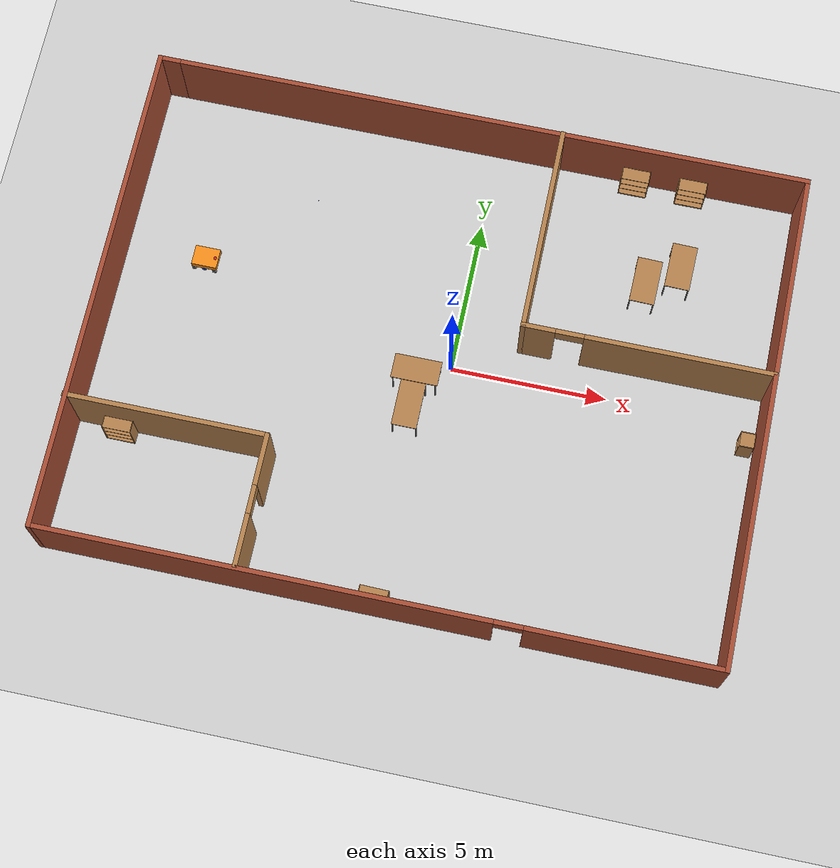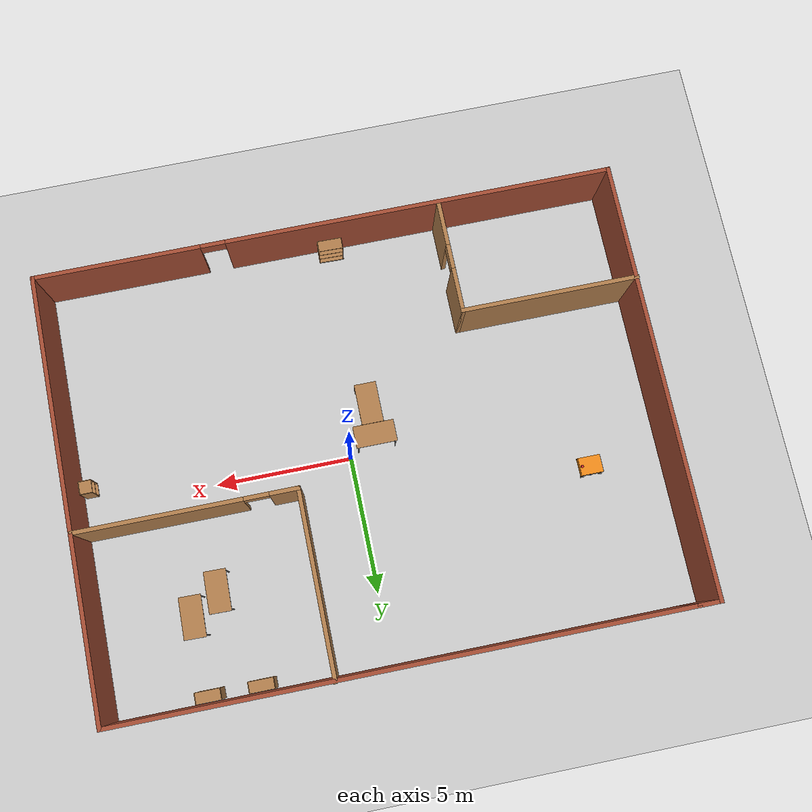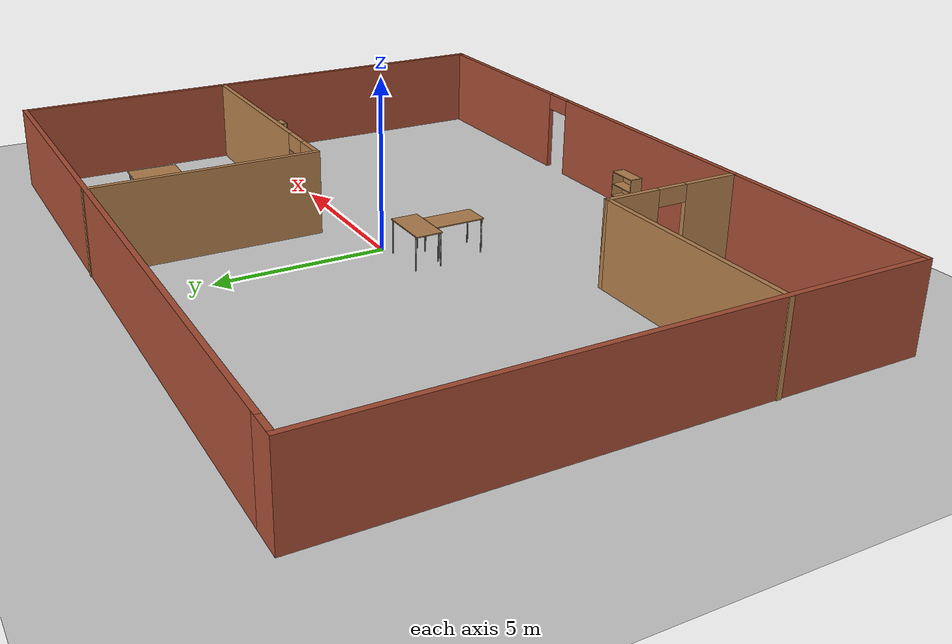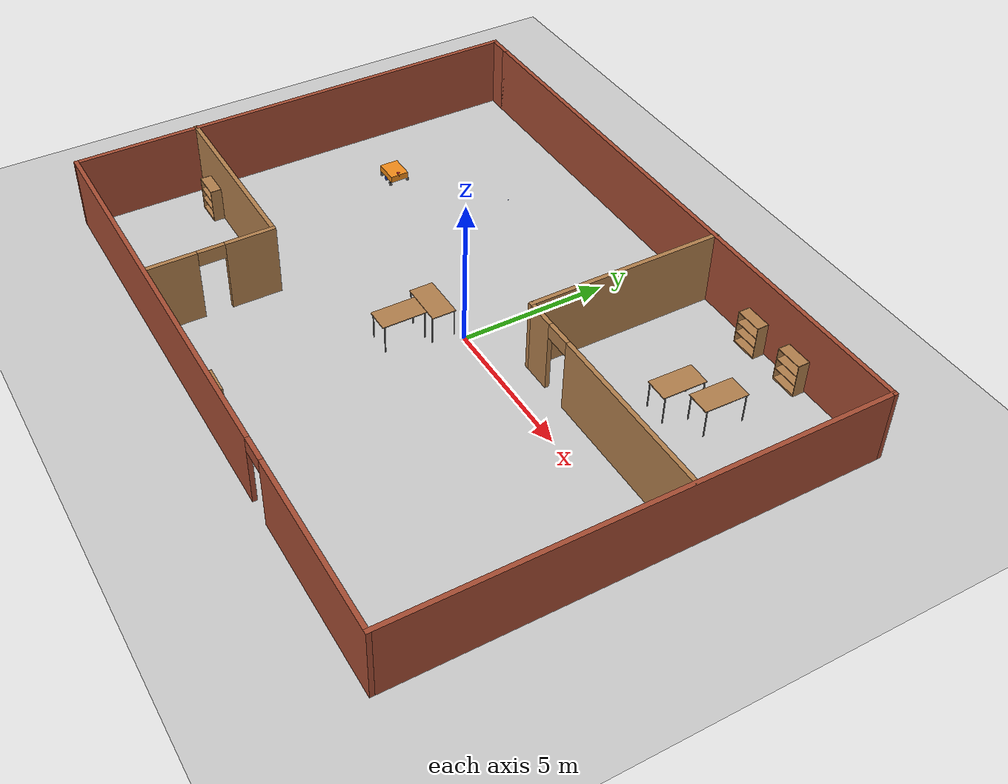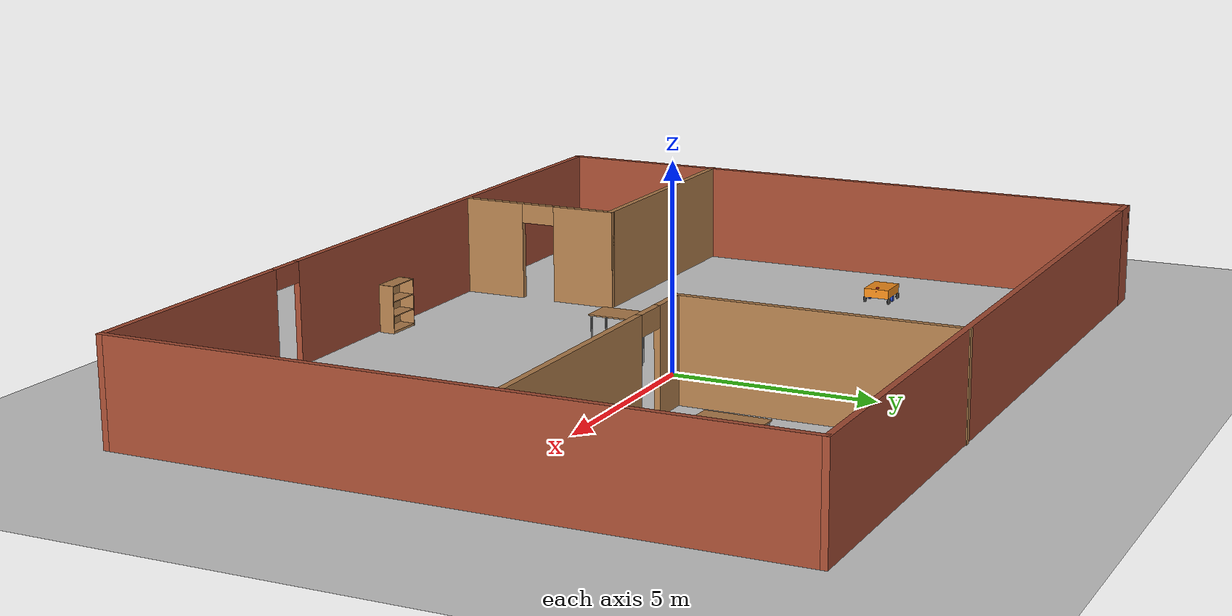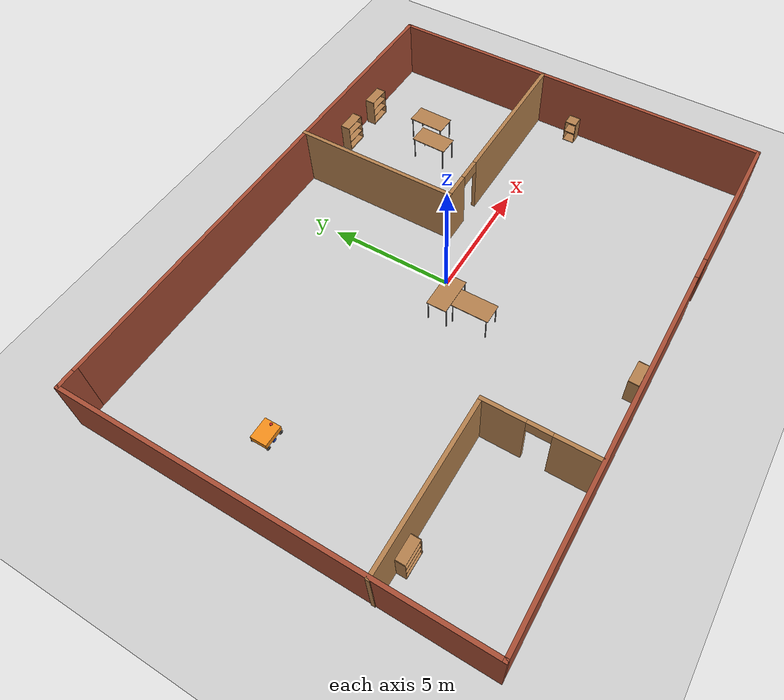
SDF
<sdf version="1.7">
 <world name="default">
  <light name="sun" type="directional">
   <pose>0 0 10 0 -0 0</pose>
   <diffuse>0.8 0.8 0.8 1</diffuse>
   <specular>0.2 0.2 0.2 1</specular>
   <attenuation>
    <range>1000</range>
    <constant>0.9</constant>
    <linear>0.01</linear>
    <quadratic>0.001</quadratic>
   </attenuation>
   <direction>-0.5 0.1 -0.9</direction>
   <spot><inner_angle>0</inner_angle><outer_angle>0</outer_angle><falloff>0</falloff></spot>
  </light>
  <model name="ground_plane">
   <static>1</static>
   <link name="link">
    <collision name="collision">
     <geometry><plane><normal>0 0 1</normal><size>100 100</size></plane></geometry>
     <surface><friction><ode><mu>100</mu><mu2>50</mu2></ode></friction></surface>
    </collision>
    <visual name="visual">
     <cast_shadows>0</cast_shadows>
     <geometry><plane><normal>0 0 1</normal><size>100 100</size></plane></geometry>
     <material>
      <script><uri>file://media/materials/scripts/gazebo.material</uri><name>Gazebo/Grey</name></script>
     </material>
    </visual>
   </link>
  </model>
  <gravity>0 0 -9.8</gravity>
  <magnetic_field>6e-06 2.3e-05 -4.2e-05</magnetic_field>
  <atmosphere type="adiabatic"/>
  <physics type="ode">
   <max_step_size>0.001</max_step_size>
   <real_time_factor>1</real_time_factor>
   <real_time_update_rate>1000</real_time_update_rate>
  </physics>
  <scene><ambient>0.4 0.4 0.4 1</ambient><background>0.7 0.7 0.7 1</background><shadows>1</shadows></scene>
  <audio><device>default</device></audio>
  <spherical_coordinates>
   <surface_model>EARTH_WGS84</surface_model>
   <latitude_deg>0</latitude_deg>
   <longitude_deg>0</longitude_deg>
   <elevation>0</elevation>
   <heading_deg>0</heading_deg>
  </spherical_coordinates>
  <model name="w1">
   <pose>-0.6546 -0.280904 0 0 -0 0</pose>
   <link name="Wall_10">
    <collision name="Wall_10_Collision">
     <geometry><box><size>16 0.15 2.5</size></box></geometry>
     <pose>0 0 1.25 0 -0 0</pose>
    </collision>
    <visual name="Wall_10_Visual">
     <pose>0 0 1.25 0 -0 0</pose>
     <geometry><box><size>16 0.15 2.5</size></box></geometry>
     <material>
      <script><uri>file://media/materials/scripts/gazebo.material</uri><name>Gazebo/Bricks</name></script>
      <ambient>1 1 1 1</ambient>
     </material>
     <meta><layer>0</layer></meta>
    </visual>
    <pose>10.5647 -0.012361 0 0 -0 -1.5708</pose>
   </link>
   <link name="Wall_11">
    <pose>0.014743 -7.93736 0 0 -0 3.14159</pose>
    <visual name="Wall_11_Visual_0">
     <pose>-7.55882 0 1.25 0 -0 0</pose>
     <geometry><box><size>6.13236 0.15 2.5</size></box></geometry>
     <material>
      <script><uri>file://media/materials/scripts/gazebo.material</uri><name>Gazebo/Bricks</name></script>
      <ambient>1 1 1 1</ambient>
     </material>
     <meta><layer>0</layer></meta>
    </visual>
    <collision name="Wall_11_Collision_0">
     <geometry><box><size>6.13236 0.15 2.5</size></box></geometry>
     <pose>-7.55882 0 1.25 0 -0 0</pose>
    </collision>
    <visual name="Wall_11_Visual_1">
     <pose>3.51618 0 1.25 0 -0 0</pose>
     <geometry><box><size>14.2176 0.15 2.5</size></box></geometry>
     <material>
      <script><uri>file://media/materials/scripts/gazebo.material</uri><name>Gazebo/Bricks</name></script>
      <ambient>1 1 1 1</ambient>
     </material>
     <meta><layer>0</layer></meta>
    </visual>
    <collision name="Wall_11_Collision_1">
     <geometry><box><size>14.2176 0.15 2.5</size></box></geometry>
     <pose>3.51618 0 1.25 0 -0 0</pose>
    </collision>
    <visual name="Wall_11_Visual_2">
     <pose>-4.04264 0 2.25 0 -0 0</pose>
     <geometry><box><size>0.9 0.15 0.5</size></box></geometry>
     <material>
      <script><uri>file://media/materials/scripts/gazebo.material</uri><name>Gazebo/Bricks</name></script>
      <ambient>1 1 1 1</ambient>
     </material>
     <meta><layer>0</layer></meta>
    </visual>
    <collision name="Wall_11_Collision_2">
     <geometry><box><size>0.9 0.15 0.5</size></box></geometry>
     <pose>-4.04264 0 2.25 0 -0 0</pose>
    </collision>
   </link>
   <link name="Wall_12">
    <collision name="Wall_12_Collision">
     <geometry><box><size>16 0.15 2.5</size></box></geometry>
     <pose>0 0 1.25 0 -0 0</pose>
    </collision>
    <visual name="Wall_12_Visual">
     <pose>0 0 1.25 0 -0 0</pose>
     <geometry><box><size>16 0.15 2.5</size></box></geometry>
     <material>
      <script><uri>file://media/materials/scripts/gazebo.material</uri><name>Gazebo/Bricks</name></script>
      <ambient>1 1 1 1</ambient>
     </material>
     <meta><layer>0</layer></meta>
    </visual>
    <pose>-10.5353 -0.012361 0 0 -0 1.5708</pose>
   </link>
   <link name="Wall_13">
    <collision name="Wall_13_Collision">
     <geometry><box><size>0.9 0.15 2.5</size></box></geometry>
     <pose>0 0 1.25 0 -0 0</pose>
    </collision>
    <visual name="Wall_13_Visual">
     <pose>0 0 1.25 0 -0 0</pose>
     <geometry><box><size>0.9 0.15 2.5</size></box></geometry>
     <material>
      <script><uri>file://media/materials/scripts/gazebo.material</uri><name>Gazebo/Bricks</name></script>
      <ambient>1 1 1 1</ambient>
     </material>
     <meta><layer>0</layer></meta>
    </visual>
    <pose>-10.1603 7.91264 0 0 -0 0</pose>
   </link>
   <link name="Wall_15">
    <collision name="Wall_15_Collision">
     <geometry><box><size>6.75 0.15 2.5</size></box></geometry>
     <pose>0 0 1.25 0 -0 0</pose>
    </collision>
    <visual name="Wall_15_Visual">
     <pose>0 0 1.25 0 -0 0</pose>
     <geometry><box><size>6.75 0.15 2.5</size></box></geometry>
     <material>
      <script><uri>file://media/materials/scripts/gazebo.material</uri><name>Gazebo/Wood</name></script>
      <ambient>1 1 1 1</ambient>
     </material>
     <meta><layer>0</layer></meta>
    </visual>
    <pose>2.68082 4.63736 0 0 -0 -1.5708</pose>
   </link>
   <link name="Wall_16">
    <pose>6.60582 1.33736 0 0 -0 0</pose>
    <visual name="Wall_16_Visual_0">
     <pose>-3.45334 0 1.25 0 -0 0</pose>
     <geometry><box><size>1.09333 0.15 2.5</size></box></geometry>
     <material>
      <script><uri>file://media/materials/scripts/gazebo.material</uri><name>Gazebo/Wood</name></script>
      <ambient>1 1 1 1</ambient>
     </material>
     <meta><layer>0</layer></meta>
    </visual>
    <collision name="Wall_16_Collision_0">
     <geometry><box><size>1.09333 0.15 2.5</size></box></geometry>
     <pose>-3.45334 0 1.25 0 -0 0</pose>
    </collision>
    <visual name="Wall_16_Visual_1">
     <pose>0.996665 0 1.25 0 -0 0</pose>
     <geometry><box><size>6.00667 0.15 2.5</size></box></geometry>
     <material>
      <script><uri>file://media/materials/scripts/gazebo.material</uri><name>Gazebo/Wood</name></script>
      <ambient>1 1 1 1</ambient>
     </material>
     <meta><layer>0</layer></meta>
    </visual>
    <collision name="Wall_16_Collision_1">
     <geometry><box><size>6.00667 0.15 2.5</size></box></geometry>
     <pose>0.996665 0 1.25 0 -0 0</pose>
    </collision>
    <visual name="Wall_16_Visual_2">
     <pose>-2.45667 0 2.25 0 -0 0</pose>
     <geometry><box><size>0.9 0.15 0.5</size></box></geometry>
     <material>
      <script><uri>file://media/materials/scripts/gazebo.material</uri><name>Gazebo/Wood</name></script>
      <ambient>1 1 1 1</ambient>
     </material>
     <meta><layer>0</layer></meta>
    </visual>
    <collision name="Wall_16_Collision_2">
     <geometry><box><size>0.9 0.15 0.5</size></box></geometry>
     <pose>-2.45667 0 2.25 0 -0 0</pose>
    </collision>
   </link>
   <link name="Wall_18">
    <collision name="Wall_18_Collision">
     <geometry><box><size>6.5 0.15 2.5</size></box></geometry>
     <pose>0 0 1.25 0 -0 0</pose>
    </collision>
    <visual name="Wall_18_Visual">
     <pose>0 0 1.25 0 -0 0</pose>
     <geometry><box><size>6.5 0.15 2.5</size></box></geometry>
     <material>
      <script><uri>file://media/materials/scripts/gazebo.material</uri><name>Gazebo/Wood</name></script>
      <ambient>1 1 1 1</ambient>
     </material>
     <meta><layer>0</layer></meta>
    </visual>
    <pose>-7.38974 -3.74811 0 0 -0 0</pose>
   </link>
   <link name="Wall_19">
    <pose>-4.21474 -5.79811 0 0 -0 -1.5708</pose>
    <visual name="Wall_19_Visual_0">
     <pose>-1.28773 0 1.25 0 -0 0</pose>
     <geometry><box><size>1.67454 0.15 2.5</size></box></geometry>
     <material>
      <script><uri>file://media/materials/scripts/gazebo.material</uri><name>Gazebo/Wood</name></script>
      <ambient>1 1 1 1</ambient>
     </material>
     <meta><layer>0</layer></meta>
    </visual>
    <collision name="Wall_19_Collision_0">
     <geometry><box><size>1.67454 0.15 2.5</size></box></geometry>
     <pose>-1.28773 0 1.25 0 -0 0</pose>
    </collision>
    <visual name="Wall_19_Visual_1">
     <pose>1.28727 0 1.25 0 -0 0</pose>
     <geometry><box><size>1.67545 0.15 2.5</size></box></geometry>
     <material>
      <script><uri>file://media/materials/scripts/gazebo.material</uri><name>Gazebo/Wood</name></script>
      <ambient>1 1 1 1</ambient>
     </material>
     <meta><layer>0</layer></meta>
    </visual>
    <collision name="Wall_19_Collision_1">
     <geometry><box><size>1.67545 0.15 2.5</size></box></geometry>
     <pose>1.28727 0 1.25 0 -0 0</pose>
    </collision>
    <visual name="Wall_19_Visual_2">
     <pose>-0.000455 0 2.25 0 -0 0</pose>
     <geometry><box><size>0.9 0.15 0.5</size></box></geometry>
     <material>
      <script><uri>file://media/materials/scripts/gazebo.material</uri><name>Gazebo/Wood</name></script>
      <ambient>1 1 1 1</ambient>
     </material>
     <meta><layer>0</layer></meta>
    </visual>
    <collision name="Wall_19_Collision_2">
     <geometry><box><size>0.9 0.15 0.5</size></box></geometry>
     <pose>-0.000455 0 2.25 0 -0 0</pose>
    </collision>
   </link>
   <link name="Wall_9">
    <collision name="Wall_9_Collision">
     <geometry><box><size>20.5 0.15 2.5</size></box></geometry>
     <pose>0 0 1.25 0 -0 0</pose>
    </collision>
    <visual name="Wall_9_Visual">
     <pose>0 0 1.25 0 -0 0</pose>
     <geometry><box><size>20.5 0.15 2.5</size></box></geometry>
     <material>
      <script><uri>file://media/materials/scripts/gazebo.material</uri><name>Gazebo/Bricks</name></script>
      <ambient>1 1 1 1</ambient>
     </material>
     <meta><layer>0</layer></meta>
    </visual>
    <pose>0.389743 7.91264 0 0 -0 0</pose>
   </link>
   <static>1</static>
  </model>
  <model name="bookshelf">
   <static>1</static>
   <link name="link">
    <inertial><mass>1</mass></inertial>
    <collision name="back">
     <pose>0 0.005 0.6 0 -0 0</pose>
     <geometry><box><size>0.9 0.01 1.2</size></box></geometry>
    </collision>
    <visual name="visual1">
     <pose>0 0.005 0.6 0 -0 0</pose>
     <geometry><box><size>0.9 0.01 1.2</size></box></geometry>
     <material>
      <script><uri>file://media/materials/scripts/gazebo.material</uri><name>Gazebo/Wood</name></script>
     </material>
    </visual>
    <collision name="left_side">
     <pose>0.45 -0.195 0.6 0 -0 0</pose>
     <geometry><box><size>0.02 0.4 1.2</size></box></geometry>
    </collision>
    <visual name="visual2">
     <pose>0.45 -0.195 0.6 0 -0 0</pose>
     <geometry><box><size>0.02 0.4 1.2</size></box></geometry>
     <material>
      <script><uri>file://media/materials/scripts/gazebo.material</uri><name>Gazebo/Wood</name></script>
     </material>
    </visual>
    <collision name="right_side">
     <pose>-0.45 -0.195 0.6 0 -0 0</pose>
     <geometry><box><size>0.02 0.4 1.2</size></box></geometry>
    </collision>
    <visual name="visual3">
     <pose>-0.45 -0.195 0.6 0 -0 0</pose>
     <geometry><box><size>0.02 0.4 1.2</size></box></geometry>
     <material>
      <script><uri>file://media/materials/scripts/gazebo.material</uri><name>Gazebo/Wood</name></script>
     </material>
    </visual>
    <collision name="bottom">
     <pose>0 -0.195 0.03 0 -0 0</pose>
     <geometry><box><size>0.88 0.4 0.06</size></box></geometry>
    </collision>
    <visual name="visual4">
     <pose>0 -0.195 0.03 0 -0 0</pose>
     <geometry><box><size>0.88 0.4 0.06</size></box></geometry>
     <material>
      <script><uri>file://media/materials/scripts/gazebo.material</uri><name>Gazebo/Wood</name></script>
     </material>
    </visual>
    <collision name="top">
     <pose>0 -0.195 1.19 0 -0 0</pose>
     <geometry><box><size>0.88 0.4 0.02</size></box></geometry>
    </collision>
    <visual name="visual5">
     <pose>0 -0.195 1.19 0 -0 0</pose>
     <geometry><box><size>0.88 0.4 0.02</size></box></geometry>
     <material>
      <script><uri>file://media/materials/scripts/gazebo.material</uri><name>Gazebo/Wood</name></script>
     </material>
    </visual>
    <collision name="low_shelf">
     <pose>0 -0.195 0.43 0 -0 0</pose>
     <geometry><box><size>0.88 0.4 0.02</size></box></geometry>
    </collision>
    <visual name="visual6">
     <pose>0 -0.195 0.43 0 -0 0</pose>
     <geometry><box><size>0.88 0.4 0.02</size></box></geometry>
     <material>
      <script><uri>file://media/materials/scripts/gazebo.material</uri><name>Gazebo/Wood</name></script>
     </material>
    </visual>
    <collision name="high_shelf">
     <pose>0 -0.195 0.8 0 -0 0</pose>
     <geometry><box><size>0.88 0.4 0.02</size></box></geometry>
    </collision>
    <visual name="visual7">
     <pose>0 -0.195 0.8 0 -0 0</pose>
     <geometry><box><size>0.88 0.4 0.02</size></box></geometry>
     <material>
      <script><uri>file://media/materials/scripts/gazebo.material</uri><name>Gazebo/Wood</name></script>
     </material>
    </visual>
   </link>
   <pose>4.57702 7.51069 0 0 -0 0</pose>
  </model>
  <model name="bookshelf_clone">
   <static>1</static>
   <link name="link">
    <inertial><mass>1</mass></inertial>
    <collision name="back">
     <pose>0 0.005 0.6 0 -0 0</pose>
     <geometry><box><size>0.9 0.01 1.2</size></box></geometry>
    </collision>
    <visual name="visual1">
     <pose>0 0.005 0.6 0 -0 0</pose>
     <geometry><box><size>0.9 0.01 1.2</size></box></geometry>
     <material>
      <script><uri>file://media/materials/scripts/gazebo.material</uri><name>Gazebo/Wood</name></script>
     </material>
    </visual>
    <collision name="left_side">
     <pose>0.45 -0.195 0.6 0 -0 0</pose>
     <geometry><box><size>0.02 0.4 1.2</size></box></geometry>
    </collision>
    <visual name="visual2">
     <pose>0.45 -0.195 0.6 0 -0 0</pose>
     <geometry><box><size>0.02 0.4 1.2</size></box></geometry>
     <material>
      <script><uri>file://media/materials/scripts/gazebo.material</uri><name>Gazebo/Wood</name></script>
     </material>
    </visual>
    <collision name="right_side">
     <pose>-0.45 -0.195 0.6 0 -0 0</pose>
     <geometry><box><size>0.02 0.4 1.2</size></box></geometry>
    </collision>
    <visual name="visual3">
     <pose>-0.45 -0.195 0.6 0 -0 0</pose>
     <geometry><box><size>0.02 0.4 1.2</size></box></geometry>
     <material>
      <script><uri>file://media/materials/scripts/gazebo.material</uri><name>Gazebo/Wood</name></script>
     </material>
    </visual>
    <collision name="bottom">
     <pose>0 -0.195 0.03 0 -0 0</pose>
     <geometry><box><size>0.88 0.4 0.06</size></box></geometry>
    </collision>
    <visual name="visual4">
     <pose>0 -0.195 0.03 0 -0 0</pose>
     <geometry><box><size>0.88 0.4 0.06</size></box></geometry>
     <material>
      <script><uri>file://media/materials/scripts/gazebo.material</uri><name>Gazebo/Wood</name></script>
     </material>
    </visual>
    <collision name="top">
     <pose>0 -0.195 1.19 0 -0 0</pose>
     <geometry><box><size>0.88 0.4 0.02</size></box></geometry>
    </collision>
    <visual name="visual5">
     <pose>0 -0.195 1.19 0 -0 0</pose>
     <geometry><box><size>0.88 0.4 0.02</size></box></geometry>
     <material>
      <script><uri>file://media/materials/scripts/gazebo.material</uri><name>Gazebo/Wood</name></script>
     </material>
    </visual>
    <collision name="low_shelf">
     <pose>0 -0.195 0.43 0 -0 0</pose>
     <geometry><box><size>0.88 0.4 0.02</size></box></geometry>
    </collision>
    <visual name="visual6">
     <pose>0 -0.195 0.43 0 -0 0</pose>
     <geometry><box><size>0.88 0.4 0.02</size></box></geometry>
     <material>
      <script><uri>file://media/materials/scripts/gazebo.material</uri><name>Gazebo/Wood</name></script>
     </material>
    </visual>
    <collision name="high_shelf">
     <pose>0 -0.195 0.8 0 -0 0</pose>
     <geometry><box><size>0.88 0.4 0.02</size></box></geometry>
    </collision>
    <visual name="visual7">
     <pose>0 -0.195 0.8 0 -0 0</pose>
     <geometry><box><size>0.88 0.4 0.02</size></box></geometry>
     <material>
      <script><uri>file://media/materials/scripts/gazebo.material</uri><name>Gazebo/Wood</name></script>
     </material>
    </visual>
   </link>
   <pose>6.43757 7.50809 0 0 -0 0</pose>
  </model>
  <model name="bookshelf_clone_0">
   <static>1</static>
   <link name="link">
    <inertial><mass>1</mass></inertial>
    <collision name="back">
     <pose>0 0.005 0.6 0 -0 0</pose>
     <geometry><box><size>0.9 0.01 1.2</size></box></geometry>
    </collision>
    <visual name="visual1">
     <pose>0 0.005 0.6 0 -0 0</pose>
     <geometry><box><size>0.9 0.01 1.2</size></box></geometry>
     <material>
      <script><uri>file://media/materials/scripts/gazebo.material</uri><name>Gazebo/Wood</name></script>
     </material>
    </visual>
    <collision name="left_side">
     <pose>0.45 -0.195 0.6 0 -0 0</pose>
     <geometry><box><size>0.02 0.4 1.2</size></box></geometry>
    </collision>
    <visual name="visual2">
     <pose>0.45 -0.195 0.6 0 -0 0</pose>
     <geometry><box><size>0.02 0.4 1.2</size></box></geometry>
     <material>
      <script><uri>file://media/materials/scripts/gazebo.material</uri><name>Gazebo/Wood</name></script>
     </material>
    </visual>
    <collision name="right_side">
     <pose>-0.45 -0.195 0.6 0 -0 0</pose>
     <geometry><box><size>0.02 0.4 1.2</size></box></geometry>
    </collision>
    <visual name="visual3">
     <pose>-0.45 -0.195 0.6 0 -0 0</pose>
     <geometry><box><size>0.02 0.4 1.2</size></box></geometry>
     <material>
      <script><uri>file://media/materials/scripts/gazebo.material</uri><name>Gazebo/Wood</name></script>
     </material>
    </visual>
    <collision name="bottom">
     <pose>0 -0.195 0.03 0 -0 0</pose>
     <geometry><box><size>0.88 0.4 0.06</size></box></geometry>
    </collision>
    <visual name="visual4">
     <pose>0 -0.195 0.03 0 -0 0</pose>
     <geometry><box><size>0.88 0.4 0.06</size></box></geometry>
     <material>
      <script><uri>file://media/materials/scripts/gazebo.material</uri><name>Gazebo/Wood</name></script>
     </material>
    </visual>
    <collision name="top">
     <pose>0 -0.195 1.19 0 -0 0</pose>
     <geometry><box><size>0.88 0.4 0.02</size></box></geometry>
    </collision>
    <visual name="visual5">
     <pose>0 -0.195 1.19 0 -0 0</pose>
     <geometry><box><size>0.88 0.4 0.02</size></box></geometry>
     <material>
      <script><uri>file://media/materials/scripts/gazebo.material</uri><name>Gazebo/Wood</name></script>
     </material>
    </visual>
    <collision name="low_shelf">
     <pose>0 -0.195 0.43 0 -0 0</pose>
     <geometry><box><size>0.88 0.4 0.02</size></box></geometry>
    </collision>
    <visual name="visual6">
     <pose>0 -0.195 0.43 0 -0 0</pose>
     <geometry><box><size>0.88 0.4 0.02</size></box></geometry>
     <material>
      <script><uri>file://media/materials/scripts/gazebo.material</uri><name>Gazebo/Wood</name></script>
     </material>
    </visual>
    <collision name="high_shelf">
     <pose>0 -0.195 0.8 0 -0 0</pose>
     <geometry><box><size>0.88 0.4 0.02</size></box></geometry>
    </collision>
    <visual name="visual7">
     <pose>0 -0.195 0.8 0 -0 0</pose>
     <geometry><box><size>0.88 0.4 0.02</size></box></geometry>
     <material>
      <script><uri>file://media/materials/scripts/gazebo.material</uri><name>Gazebo/Wood</name></script>
     </material>
    </visual>
   </link>
   <pose>-9.67948 -4.08166 0 0 -0 0</pose>
  </model>
  <model name="cabinet">
   <static>1</static>
   <link name="cabinet_bottom_plate">
    <inertial>
     <pose>0 0 -1 0 -0 0</pose>
     <inertia><ixx>2.05</ixx><ixy>0</ixy><ixz>0</ixz><iyy>2.05</iyy><iyz>0</iyz><izz>2.05</izz></inertia>
     <mass>25</mass>
    </inertial>
    <collision name="cabinet_bottom_plate_geom">
     <pose>0 0 0.01 0 -0 0</pose>
     <geometry><box><size>0.45 0.45 0.02</size></box></geometry>
    </collision>
    <visual name="cabinet_bottom_plate_geom_visual">
     <pose>0 0 0.01 0 -0 0</pose>
     <geometry><box><size>0.45 0.45 0.02</size></box></geometry>
     <material>
      <script><uri>file://media/materials/scripts/gazebo.material</uri><name>Gazebo/Wood</name></script>
     </material>
    </visual>
    <collision name="cabinet_bottom_plate_geom_cabinet_back_plate">
     <pose>0.235 0 0.51 0 -0 0</pose>
     <geometry><box><size>0.02 0.45 1.02</size></box></geometry>
    </collision>
    <visual name="cabinet_bottom_plate_geom_cabinet_back_plate_visual">
     <pose>0.235 0 0.51 0 -0 0</pose>
     <geometry><box><size>0.02 0.45 1.02</size></box></geometry>
     <material>
      <script><uri>file://media/materials/scripts/gazebo.material</uri><name>Gazebo/Wood</name></script>
     </material>
    </visual>
    <collision name="cabinet_bottom_plate_geom_cabinet_left_plate">
     <pose>0 0.235 0.51 0 -0 0</pose>
     <geometry><box><size>0.45 0.02 1.02</size></box></geometry>
    </collision>
    <visual name="cabinet_bottom_plate_geom_cabinet_left_plate_visual">
     <pose>0 0.235 0.51 0 -0 0</pose>
     <geometry><box><size>0.45 0.02 1.02</size></box></geometry>
     <material>
      <script><uri>file://media/materials/scripts/gazebo.material</uri><name>Gazebo/Wood</name></script>
     </material>
    </visual>
    <collision name="cabinet_bottom_plate_geom_cabinet_middle_plate">
     <pose>0 0 0.51 0 -0 0</pose>
     <geometry><box><size>0.45 0.45 0.02</size></box></geometry>
    </collision>
    <visual name="cabinet_bottom_plate_geom_cabinet_middle_plate_visual">
     <pose>0 0 0.51 0 -0 0</pose>
     <geometry><box><size>0.45 0.45 0.02</size></box></geometry>
     <material>
      <script><uri>file://media/materials/scripts/gazebo.material</uri><name>Gazebo/Wood</name></script>
     </material>
    </visual>
    <collision name="cabinet_bottom_plate_geom_cabinet_right_plate">
     <pose>0 -0.235 0.51 0 -0 0</pose>
     <geometry><box><size>0.45 0.02 1.02</size></box></geometry>
    </collision>
    <visual name="cabinet_bottom_plate_geom_cabinet_right_plate_visual">
     <pose>0 -0.235 0.51 0 -0 0</pose>
     <geometry><box><size>0.45 0.02 1.02</size></box></geometry>
     <material>
      <script><uri>file://media/materials/scripts/gazebo.material</uri><name>Gazebo/Wood</name></script>
     </material>
    </visual>
    <collision name="cabinet_bottom_plate_geom_cabinet_top_plate">
     <pose>0 0 1.01 0 -0 0</pose>
     <geometry><box><size>0.45 0.45 0.02</size></box></geometry>
    </collision>
    <visual name="cabinet_bottom_plate_geom_cabinet_top_plate_visual">
     <pose>0 0 1.01 0 -0 0</pose>
     <geometry><box><size>0.45 0.45 0.02</size></box></geometry>
     <material>
      <script><uri>file://media/materials/scripts/gazebo.material</uri><name>Gazebo/Wood</name></script>
     </material>
    </visual>
   </link>
   <pose>9.51896 -0.705289 0 0 -0 0</pose>
  </model>
  <model name="bookshelf_0">
   <static>1</static>
   <link name="link">
    <inertial><mass>1</mass></inertial>
    <collision name="back">
     <pose>0 0.005 0.6 0 -0 0</pose>
     <geometry><box><size>0.9 0.01 1.2</size></box></geometry>
    </collision>
    <visual name="visual1">
     <pose>0 0.005 0.6 0 -0 0</pose>
     <geometry><box><size>0.9 0.01 1.2</size></box></geometry>
     <material>
      <script><uri>file://media/materials/scripts/gazebo.material</uri><name>Gazebo/Wood</name></script>
     </material>
    </visual>
    <collision name="left_side">
     <pose>0.45 -0.195 0.6 0 -0 0</pose>
     <geometry><box><size>0.02 0.4 1.2</size></box></geometry>
    </collision>
    <visual name="visual2">
     <pose>0.45 -0.195 0.6 0 -0 0</pose>
     <geometry><box><size>0.02 0.4 1.2</size></box></geometry>
     <material>
      <script><uri>file://media/materials/scripts/gazebo.material</uri><name>Gazebo/Wood</name></script>
     </material>
    </visual>
    <collision name="right_side">
     <pose>-0.45 -0.195 0.6 0 -0 0</pose>
     <geometry><box><size>0.02 0.4 1.2</size></box></geometry>
    </collision>
    <visual name="visual3">
     <pose>-0.45 -0.195 0.6 0 -0 0</pose>
     <geometry><box><size>0.02 0.4 1.2</size></box></geometry>
     <material>
      <script><uri>file://media/materials/scripts/gazebo.material</uri><name>Gazebo/Wood</name></script>
     </material>
    </visual>
    <collision name="bottom">
     <pose>0 -0.195 0.03 0 -0 0</pose>
     <geometry><box><size>0.88 0.4 0.06</size></box></geometry>
    </collision>
    <visual name="visual4">
     <pose>0 -0.195 0.03 0 -0 0</pose>
     <geometry><box><size>0.88 0.4 0.06</size></box></geometry>
     <material>
      <script><uri>file://media/materials/scripts/gazebo.material</uri><name>Gazebo/Wood</name></script>
     </material>
    </visual>
    <collision name="top">
     <pose>0 -0.195 1.19 0 -0 0</pose>
     <geometry><box><size>0.88 0.4 0.02</size></box></geometry>
    </collision>
    <visual name="visual5">
     <pose>0 -0.195 1.19 0 -0 0</pose>
     <geometry><box><size>0.88 0.4 0.02</size></box></geometry>
     <material>
      <script><uri>file://media/materials/scripts/gazebo.material</uri><name>Gazebo/Wood</name></script>
     </material>
    </visual>
    <collision name="low_shelf">
     <pose>0 -0.195 0.43 0 -0 0</pose>
     <geometry><box><size>0.88 0.4 0.02</size></box></geometry>
    </collision>
    <visual name="visual6">
     <pose>0 -0.195 0.43 0 -0 0</pose>
     <geometry><box><size>0.88 0.4 0.02</size></box></geometry>
     <material>
      <script><uri>file://media/materials/scripts/gazebo.material</uri><name>Gazebo/Wood</name></script>
     </material>
    </visual>
    <collision name="high_shelf">
     <pose>0 -0.195 0.8 0 -0 0</pose>
     <geometry><box><size>0.88 0.4 0.02</size></box></geometry>
    </collision>
    <visual name="visual7">
     <pose>0 -0.195 0.8 0 -0 0</pose>
     <geometry><box><size>0.88 0.4 0.02</size></box></geometry>
     <material>
      <script><uri>file://media/materials/scripts/gazebo.material</uri><name>Gazebo/Wood</name></script>
     </material>
    </visual>
   </link>
   <pose>-0.776706 -8.07139 0 0 -0 3.1211</pose>
  </model>
  <model name="mybot">
   <link name="base_link">
    <inertial>
     <pose>-0.099 0 0.0305 0 -0 0</pose>
     <mass>1</mass>
     <inertia>
      <ixx>0.0570656</ixx>
      <ixy>0</ixy>
      <ixz>-0.0003995</ixz>
      <iyy>0.0938096</iyy>
      <iyz>0</iyz>
      <izz>0.129004</izz>
     </inertia>
    </inertial>
    <collision name="base_link_fixed_joint_lump__chassis_collision">
     <pose>0 0 0.115 0 -0 0</pose>
     <geometry><box><size>0.82 0.65 0.23</size></box></geometry>
    </collision>
    <collision name="base_link_fixed_joint_lump__caster_wheel_fl_collision_1">
     <pose>0.335 0.325 -0.075 -1.5708 0 0</pose>
     <geometry><sphere><radius>0.075</radius></sphere></geometry>
     <surface><friction><ode><mu>0.001</mu><mu2>0.001</mu2></ode></friction></surface>
    </collision>
    <collision name="base_link_fixed_joint_lump__caster_wheel_fr_collision_2">
     <pose>0.335 -0.325 -0.075 1.5708 -0 0</pose>
     <geometry><sphere><radius>0.075</radius></sphere></geometry>
     <surface><friction><ode><mu>0.001</mu><mu2>0.001</mu2></ode></friction></surface>
    </collision>
    <collision name="base_link_fixed_joint_lump__caster_wheel_rl_collision_3">
     <pose>-0.335 0.325 -0.075 -1.5708 0 0</pose>
     <geometry><sphere><radius>0.075</radius></sphere></geometry>
     <surface><friction><ode><mu>0.001</mu><mu2>0.001</mu2></ode></friction></surface>
    </collision>
    <collision name="base_link_fixed_joint_lump__caster_wheel_rr_collision_4">
     <pose>-0.335 -0.325 -0.075 1.5708 -0 0</pose>
     <geometry><sphere><radius>0.075</radius></sphere></geometry>
     <surface><friction><ode><mu>0.001</mu><mu2>0.001</mu2></ode></friction></surface>
    </collision>
    <collision name="base_link_fixed_joint_lump__laser_frame_collision_5">
     <pose>0.31 0 0.23 0 -0 0</pose>
     <geometry><cylinder><length>0.04</length><radius>0.05</radius></cylinder></geometry>
    </collision>
    <visual name="base_link_fixed_joint_lump__chassis_visual">
     <pose>0 0 0.115 0 -0 0</pose>
     <geometry><box><size>0.82 0.65 0.23</size></box></geometry>
     <material>
      <script><name>Gazebo/Orange</name><uri>file://media/materials/scripts/gazebo.material</uri></script>
     </material>
    </visual>
    <visual name="base_link_fixed_joint_lump__camera_link_visual_1">
     <pose>0.41 0 0.17 0 -0 0</pose>
     <geometry><box><size>0.01 0.03 0.03</size></box></geometry>
     <material>
      <script><name>Gazebo/Red</name><uri>file://media/materials/scripts/gazebo.material</uri></script>
     </material>
    </visual>
    <visual name="base_link_fixed_joint_lump__caster_wheel_fl_visual_2">
     <pose>0.335 0.325 -0.075 -1.5708 0 0</pose>
     <geometry><cylinder><length>0.045</length><radius>0.075</radius></cylinder></geometry>
     <material>
      <script><name>Gazebo/Black</name><uri>file://media/materials/scripts/gazebo.material</uri></script>
     </material>
    </visual>
    <visual name="base_link_fixed_joint_lump__caster_wheel_fr_visual_3">
     <pose>0.335 -0.325 -0.075 1.5708 -0 0</pose>
     <geometry><cylinder><length>0.045</length><radius>0.075</radius></cylinder></geometry>
     <material>
      <script><name>Gazebo/Black</name><uri>file://media/materials/scripts/gazebo.material</uri></script>
     </material>
    </visual>
    <visual name="base_link_fixed_joint_lump__caster_wheel_rl_visual_4">
     <pose>-0.335 0.325 -0.075 -1.5708 0 0</pose>
     <geometry><cylinder><length>0.045</length><radius>0.075</radius></cylinder></geometry>
     <material>
      <script><name>Gazebo/Black</name><uri>file://media/materials/scripts/gazebo.material</uri></script>
     </material>
    </visual>
    <visual name="base_link_fixed_joint_lump__caster_wheel_rr_visual_5">
     <pose>-0.335 -0.325 -0.075 1.5708 -0 0</pose>
     <geometry><cylinder><length>0.045</length><radius>0.075</radius></cylinder></geometry>
     <material>
      <script><name>Gazebo/Black</name><uri>file://media/materials/scripts/gazebo.material</uri></script>
     </material>
    </visual>
    <visual name="base_link_fixed_joint_lump__laser_frame_visual_6">
     <pose>0.31 0 0.23 0 -0 0</pose>
     <geometry><cylinder><length>0.04</length><radius>0.05</radius></cylinder></geometry>
     <material>
      <script><name>Gazebo/Red</name><uri>file://media/materials/scripts/gazebo.material</uri></script>
     </material>
    </visual>
    <sensor name="camera" type="camera">
     <visualize>1</visualize>
     <update_rate>10</update_rate>
     <camera>
      <horizontal_fov>1.089</horizontal_fov>
      <image><format>R8G8B8</format><width>640</width><height>480</height></image>
      <clip><near>0.05</near><far>8</far></clip>
     </camera>
     <plugin name="camera_controller" filename="libgazebo_ros_camera.so">
      <frame_name>camera_link_optical</frame_name>
     </plugin>
     <pose>0.41 0 0.17 0 -0 0</pose>
    </sensor>
    <sensor name="laser_f" type="ray">
     <visualize>1</visualize>
     <update_rate>10</update_rate>
     <ray>
      <scan>
       <horizontal>
        <samples>180</samples>
        <min_angle>-2</min_angle>
        <max_angle>2</max_angle>
        <resolution>1</resolution>
       </horizontal>
       <vertical><samples>1</samples><min_angle>0</min_angle><max_angle>0</max_angle></vertical>
      </scan>
      <range><min>0.4</min><max>12</max></range>
     </ray>
     <plugin name="laser_controller_f" filename="libgazebo_ros_ray_sensor.so">
      <ros><argument>~/out:=scan</argument></ros>
      <output_type>sensor_msgs/LaserScan</output_type>
      <frame_name>laser_frame</frame_name>
     </plugin>
     <pose>0.31 0 0.23 0 -0 0</pose>
    </sensor>
   </link>
   <joint name="left_wheel_joint" type="revolute">
    <pose relative_to="base_link">0 0.303 -0.075 -1.5708 0 0</pose>
    <parent>base_link</parent>
    <child>left_wheel</child>
    <axis>
     <xyz>0 0 1</xyz>
     <limit><lower>-1e+16</lower><upper>1e+16</upper></limit>
     <dynamics><spring_reference>0</spring_reference><spring_stiffness>0</spring_stiffness></dynamics>
    </axis>
   </joint>
   <link name="left_wheel">
    <pose relative_to="left_wheel_joint">0 0 0 0 -0 0</pose>
    <inertial>
     <mass>0.1</mass>
     <inertia>
      <ixx>0.0001575</ixx>
      <ixy>0</ixy>
      <ixz>0</ixz>
      <iyy>0.0001575</iyy>
      <iyz>0</iyz>
      <izz>0.00028125</izz>
     </inertia>
    </inertial>
    <collision name="left_wheel_collision">
     <geometry><sphere><radius>0.075</radius></sphere></geometry>
    </collision>
    <visual name="left_wheel_visual">
     <geometry><cylinder><length>0.045</length><radius>0.075</radius></cylinder></geometry>
     <material>
      <script><name>Gazebo/Blue</name><uri>file://media/materials/scripts/gazebo.material</uri></script>
     </material>
    </visual>
   </link>
   <joint name="right_wheel_joint" type="revolute">
    <pose relative_to="base_link">0 -0.303 -0.075 1.5708 -0 0</pose>
    <parent>base_link</parent>
    <child>right_wheel</child>
    <axis>
     <xyz>0 0 -1</xyz>
     <limit><lower>-1e+16</lower><upper>1e+16</upper></limit>
     <dynamics><spring_reference>0</spring_reference><spring_stiffness>0</spring_stiffness></dynamics>
    </axis>
   </joint>
   <link name="right_wheel">
    <pose relative_to="right_wheel_joint">0 0 0 0 -0 0</pose>
    <inertial>
     <mass>0.1</mass>
     <inertia>
      <ixx>0.0001575</ixx>
      <ixy>0</ixy>
      <ixz>0</ixz>
      <iyy>0.0001575</iyy>
      <iyz>0</iyz>
      <izz>0.00028125</izz>
     </inertia>
    </inertial>
    <collision name="right_wheel_collision">
     <geometry><sphere><radius>0.075</radius></sphere></geometry>
    </collision>
    <visual name="right_wheel_visual">
     <geometry><cylinder><length>0.045</length><radius>0.075</radius></cylinder></geometry>
     <material>
      <script><name>Gazebo/Blue</name><uri>file://media/materials/scripts/gazebo.material</uri></script>
     </material>
    </visual>
   </link>
   <static>0</static>
   <plugin name="gazebo_ros2_control" filename="libgazebo_ros2_control.so">
    <parameters>/ros2_ws/install/turtlebot3_gazebo/share/turtlebot3_gazebo/config/my_controllers.yaml</parameters>
    <parameters>/ros2_ws/install/turtlebot3_gazebo/share/turtlebot3_gazebo/config/gaz_ros2_ctl_use_sim.yaml</parameters>
   </plugin>
   <pose>-8.5 2 0.15 0 -0 0</pose>
  </model>
  <model name="marble_1_5cm">
   <link name="link">
    <pose>0 0 0.0075 0 -0 0</pose>
    <inertial>
     <mass>0.0062</mass>
     <inertia>
      <ixx>1.395e-07</ixx>
      <ixy>0</ixy>
      <ixz>0</ixz>
      <iyy>1.395e-07</iyy>
      <iyz>0</iyz>
      <izz>1.395e-07</izz>
     </inertia>
    </inertial>
    <collision name="collision">
     <geometry><sphere><radius>0.0075</radius></sphere></geometry>
     <surface>
      <contact>
       <poissons_ratio>0.22</poissons_ratio>
       <elastic_modulus>5.1e+10</elastic_modulus>
       <ode><kp>100000</kp><kd>100</kd><max_vel>100</max_vel><min_depth>0.001</min_depth></ode>
      </contact>
      <friction>
       <torsional>
        <coefficient>1</coefficient>
        <use_patch_radius>0</use_patch_radius>
        <surface_radius>0.01</surface_radius>
       </torsional>
      </friction>
     </surface>
    </collision>
    <visual name="visual">
     <geometry><sphere><radius>0.0075</radius></sphere></geometry>
     <material>
      <script><uri>file://media/materials/scripts/gazebo.material</uri><name>Gazebo/Blue</name></script>
     </material>
    </visual>
    <velocity_decay><linear>0</linear><angular>0.005</angular></velocity_decay>
   </link>
   <pose>-5.42419 4.81821 -0.001001 0 -0 0</pose>
  </model>
  <model name="table">
   <static>1</static>
   <link name="link">
    <collision name="surface">
     <pose>0 0 1 0 -0 0</pose>
     <geometry><box><size>1.5 0.8 0.03</size></box></geometry>
     <surface><friction><ode><mu>0.6</mu><mu2>0.6</mu2></ode></friction></surface>
    </collision>
    <visual name="visual1">
     <pose>0 0 1 0 -0 0</pose>
     <geometry><box><size>1.5 0.8 0.03</size></box></geometry>
     <material>
      <script><uri>file://media/materials/scripts/gazebo.material</uri><name>Gazebo/Wood</name></script>
     </material>
    </visual>
    <collision name="front_left_leg">
     <pose>0.68 0.38 0.5 0 -0 0</pose>
     <geometry><cylinder><radius>0.02</radius><length>1</length></cylinder></geometry>
    </collision>
    <visual name="front_left_leg">
     <pose>0.68 0.38 0.5 0 -0 0</pose>
     <geometry><cylinder><radius>0.02</radius><length>1</length></cylinder></geometry>
     <material>
      <script><uri>file://media/materials/scripts/gazebo.material</uri><name>Gazebo/Grey</name></script>
     </material>
    </visual>
    <collision name="front_right_leg">
     <pose>0.68 -0.38 0.5 0 -0 0</pose>
     <geometry><cylinder><radius>0.02</radius><length>1</length></cylinder></geometry>
    </collision>
    <visual name="front_right_leg">
     <pose>0.68 -0.38 0.5 0 -0 0</pose>
     <geometry><cylinder><radius>0.02</radius><length>1</length></cylinder></geometry>
     <material>
      <script><uri>file://media/materials/scripts/gazebo.material</uri><name>Gazebo/Grey</name></script>
     </material>
    </visual>
    <collision name="back_right_leg">
     <pose>-0.68 -0.38 0.5 0 -0 0</pose>
     <geometry><cylinder><radius>0.02</radius><length>1</length></cylinder></geometry>
    </collision>
    <visual name="back_right_leg">
     <pose>-0.68 -0.38 0.5 0 -0 0</pose>
     <geometry><cylinder><radius>0.02</radius><length>1</length></cylinder></geometry>
     <material>
      <script><uri>file://media/materials/scripts/gazebo.material</uri><name>Gazebo/Grey</name></script>
     </material>
    </visual>
    <collision name="back_left_leg">
     <pose>-0.68 0.38 0.5 0 -0 0</pose>
     <geometry><cylinder><radius>0.02</radius><length>1</length></cylinder></geometry>
    </collision>
    <visual name="back_left_leg">
     <pose>-0.68 0.38 0.5 0 -0 0</pose>
     <geometry><cylinder><radius>0.02</radius><length>1</length></cylinder></geometry>
     <material>
      <script><uri>file://media/materials/scripts/gazebo.material</uri><name>Gazebo/Grey</name></script>
     </material>
    </visual>
   </link>
   <pose>5.53074 3.85317 0 0 -0 1.54913</pose>
  </model>
  <model name="table_clone">
   <static>1</static>
   <link name="link">
    <collision name="surface">
     <pose>0 0 1 0 -0 0</pose>
     <geometry><box><size>1.5 0.8 0.03</size></box></geometry>
     <surface><friction><ode><mu>0.6</mu><mu2>0.6</mu2></ode></friction></surface>
    </collision>
    <visual name="visual1">
     <pose>0 0 1 0 -0 0</pose>
     <geometry><box><size>1.5 0.8 0.03</size></box></geometry>
     <material>
      <script><uri>file://media/materials/scripts/gazebo.material</uri><name>Gazebo/Wood</name></script>
     </material>
    </visual>
    <collision name="front_left_leg">
     <pose>0.68 0.38 0.5 0 -0 0</pose>
     <geometry><cylinder><radius>0.02</radius><length>1</length></cylinder></geometry>
    </collision>
    <visual name="front_left_leg">
     <pose>0.68 0.38 0.5 0 -0 0</pose>
     <geometry><cylinder><radius>0.02</radius><length>1</length></cylinder></geometry>
     <material>
      <script><uri>file://media/materials/scripts/gazebo.material</uri><name>Gazebo/Grey</name></script>
     </material>
    </visual>
    <collision name="front_right_leg">
     <pose>0.68 -0.38 0.5 0 -0 0</pose>
     <geometry><cylinder><radius>0.02</radius><length>1</length></cylinder></geometry>
    </collision>
    <visual name="front_right_leg">
     <pose>0.68 -0.38 0.5 0 -0 0</pose>
     <geometry><cylinder><radius>0.02</radius><length>1</length></cylinder></geometry>
     <material>
      <script><uri>file://media/materials/scripts/gazebo.material</uri><name>Gazebo/Grey</name></script>
     </material>
    </visual>
    <collision name="back_right_leg">
     <pose>-0.68 -0.38 0.5 0 -0 0</pose>
     <geometry><cylinder><radius>0.02</radius><length>1</length></cylinder></geometry>
    </collision>
    <visual name="back_right_leg">
     <pose>-0.68 -0.38 0.5 0 -0 0</pose>
     <geometry><cylinder><radius>0.02</radius><length>1</length></cylinder></geometry>
     <material>
      <script><uri>file://media/materials/scripts/gazebo.material</uri><name>Gazebo/Grey</name></script>
     </material>
    </visual>
    <collision name="back_left_leg">
     <pose>-0.68 0.38 0.5 0 -0 0</pose>
     <geometry><cylinder><radius>0.02</radius><length>1</length></cylinder></geometry>
    </collision>
    <visual name="back_left_leg">
     <pose>-0.68 0.38 0.5 0 -0 0</pose>
     <geometry><cylinder><radius>0.02</radius><length>1</length></cylinder></geometry>
     <material>
      <script><uri>file://media/materials/scripts/gazebo.material</uri><name>Gazebo/Grey</name></script>
     </material>
    </visual>
   </link>
   <pose>-0.998665 -0.567434 0 0 -0 0</pose>
  </model>
  <model name="table_clone_0">
   <static>1</static>
   <link name="link">
    <collision name="surface">
     <pose>0 0 1 0 -0 0</pose>
     <geometry><box><size>1.5 0.8 0.03</size></box></geometry>
     <surface><friction><ode><mu>0.6</mu><mu2>0.6</mu2></ode></friction></surface>
    </collision>
    <visual name="visual1">
     <pose>0 0 1 0 -0 0</pose>
     <geometry><box><size>1.5 0.8 0.03</size></box></geometry>
     <material>
      <script><uri>file://media/materials/scripts/gazebo.material</uri><name>Gazebo/Wood</name></script>
     </material>
    </visual>
    <collision name="front_left_leg">
     <pose>0.68 0.38 0.5 0 -0 0</pose>
     <geometry><cylinder><radius>0.02</radius><length>1</length></cylinder></geometry>
    </collision>
    <visual name="front_left_leg">
     <pose>0.68 0.38 0.5 0 -0 0</pose>
     <geometry><cylinder><radius>0.02</radius><length>1</length></cylinder></geometry>
     <material>
      <script><uri>file://media/materials/scripts/gazebo.material</uri><name>Gazebo/Grey</name></script>
     </material>
    </visual>
    <collision name="front_right_leg">
     <pose>0.68 -0.38 0.5 0 -0 0</pose>
     <geometry><cylinder><radius>0.02</radius><length>1</length></cylinder></geometry>
    </collision>
    <visual name="front_right_leg">
     <pose>0.68 -0.38 0.5 0 -0 0</pose>
     <geometry><cylinder><radius>0.02</radius><length>1</length></cylinder></geometry>
     <material>
      <script><uri>file://media/materials/scripts/gazebo.material</uri><name>Gazebo/Grey</name></script>
     </material>
    </visual>
    <collision name="back_right_leg">
     <pose>-0.68 -0.38 0.5 0 -0 0</pose>
     <geometry><cylinder><radius>0.02</radius><length>1</length></cylinder></geometry>
    </collision>
    <visual name="back_right_leg">
     <pose>-0.68 -0.38 0.5 0 -0 0</pose>
     <geometry><cylinder><radius>0.02</radius><length>1</length></cylinder></geometry>
     <material>
      <script><uri>file://media/materials/scripts/gazebo.material</uri><name>Gazebo/Grey</name></script>
     </material>
    </visual>
    <collision name="back_left_leg">
     <pose>-0.68 0.38 0.5 0 -0 0</pose>
     <geometry><cylinder><radius>0.02</radius><length>1</length></cylinder></geometry>
    </collision>
    <visual name="back_left_leg">
     <pose>-0.68 0.38 0.5 0 -0 0</pose>
     <geometry><cylinder><radius>0.02</radius><length>1</length></cylinder></geometry>
     <material>
      <script><uri>file://media/materials/scripts/gazebo.material</uri><name>Gazebo/Grey</name></script>
     </material>
    </visual>
   </link>
   <pose>-1.00188 -1.72379 0 0 -0 1.57072</pose>
  </model>
  <model name="table_clone_1">
   <static>1</static>
   <link name="link">
    <collision name="surface">
     <pose>0 0 1 0 -0 0</pose>
     <geometry><box><size>1.5 0.8 0.03</size></box></geometry>
     <surface><friction><ode><mu>0.6</mu><mu2>0.6</mu2></ode></friction></surface>
    </collision>
    <visual name="visual1">
     <pose>0 0 1 0 -0 0</pose>
     <geometry><box><size>1.5 0.8 0.03</size></box></geometry>
     <material>
      <script><uri>file://media/materials/scripts/gazebo.material</uri><name>Gazebo/Wood</name></script>
     </material>
    </visual>
    <collision name="front_left_leg">
     <pose>0.68 0.38 0.5 0 -0 0</pose>
     <geometry><cylinder><radius>0.02</radius><length>1</length></cylinder></geometry>
    </collision>
    <visual name="front_left_leg">
     <pose>0.68 0.38 0.5 0 -0 0</pose>
     <geometry><cylinder><radius>0.02</radius><length>1</length></cylinder></geometry>
     <material>
      <script><uri>file://media/materials/scripts/gazebo.material</uri><name>Gazebo/Grey</name></script>
     </material>
    </visual>
    <collision name="front_right_leg">
     <pose>0.68 -0.38 0.5 0 -0 0</pose>
     <geometry><cylinder><radius>0.02</radius><length>1</length></cylinder></geometry>
    </collision>
    <visual name="front_right_leg">
     <pose>0.68 -0.38 0.5 0 -0 0</pose>
     <geometry><cylinder><radius>0.02</radius><length>1</length></cylinder></geometry>
     <material>
      <script><uri>file://media/materials/scripts/gazebo.material</uri><name>Gazebo/Grey</name></script>
     </material>
    </visual>
    <collision name="back_right_leg">
     <pose>-0.68 -0.38 0.5 0 -0 0</pose>
     <geometry><cylinder><radius>0.02</radius><length>1</length></cylinder></geometry>
    </collision>
    <visual name="back_right_leg">
     <pose>-0.68 -0.38 0.5 0 -0 0</pose>
     <geometry><cylinder><radius>0.02</radius><length>1</length></cylinder></geometry>
     <material>
      <script><uri>file://media/materials/scripts/gazebo.material</uri><name>Gazebo/Grey</name></script>
     </material>
    </visual>
    <collision name="back_left_leg">
     <pose>-0.68 0.38 0.5 0 -0 0</pose>
     <geometry><cylinder><radius>0.02</radius><length>1</length></cylinder></geometry>
    </collision>
    <visual name="back_left_leg">
     <pose>-0.68 0.38 0.5 0 -0 0</pose>
     <geometry><cylinder><radius>0.02</radius><length>1</length></cylinder></geometry>
     <material>
      <script><uri>file://media/materials/scripts/gazebo.material</uri><name>Gazebo/Grey</name></script>
     </material>
    </visual>
   </link>
   <pose>6.54127 4.56162 0 0 0 -1.59486</pose>
  </model>
 </world>
</sdf>
